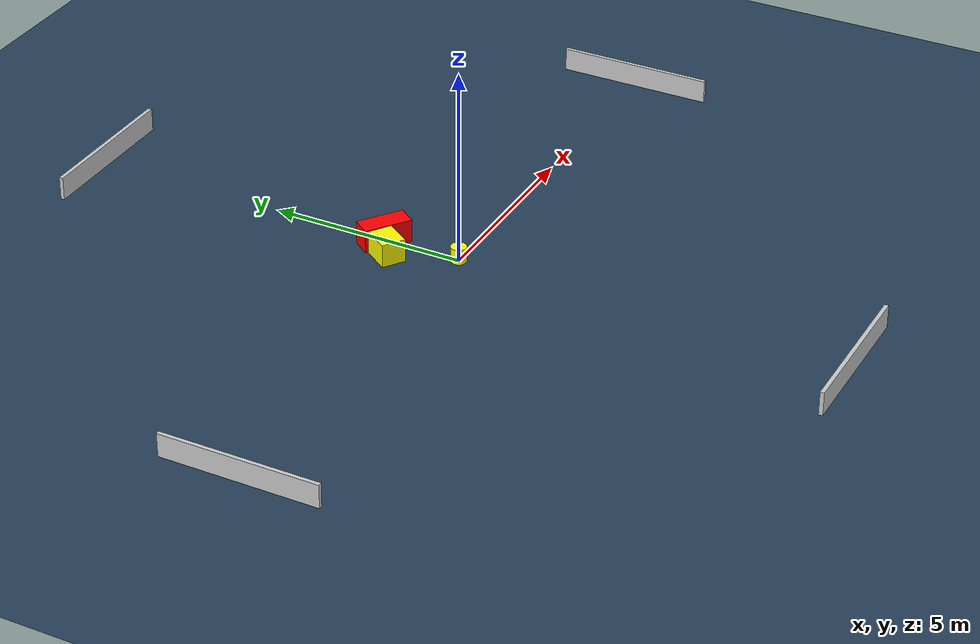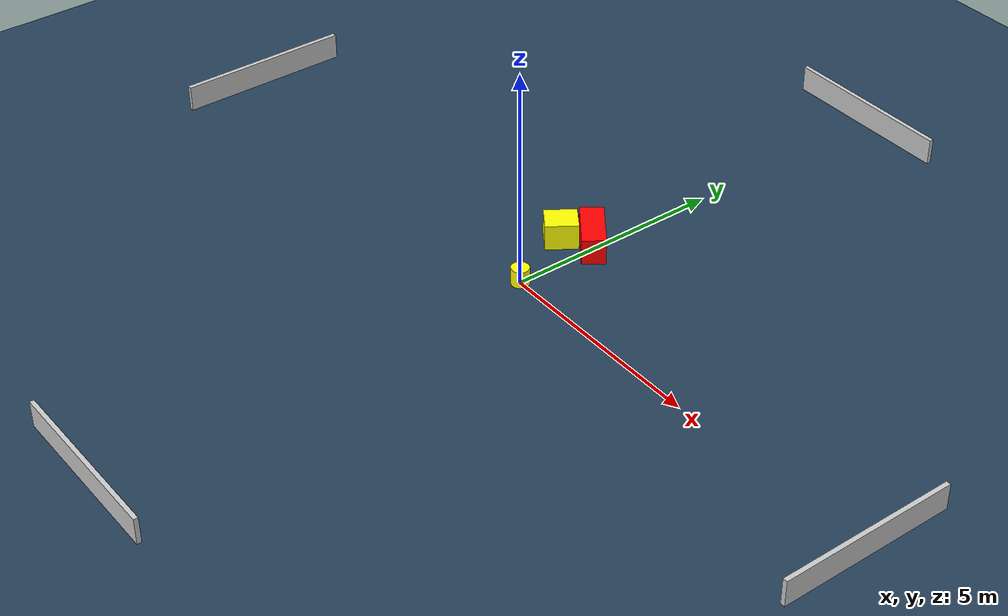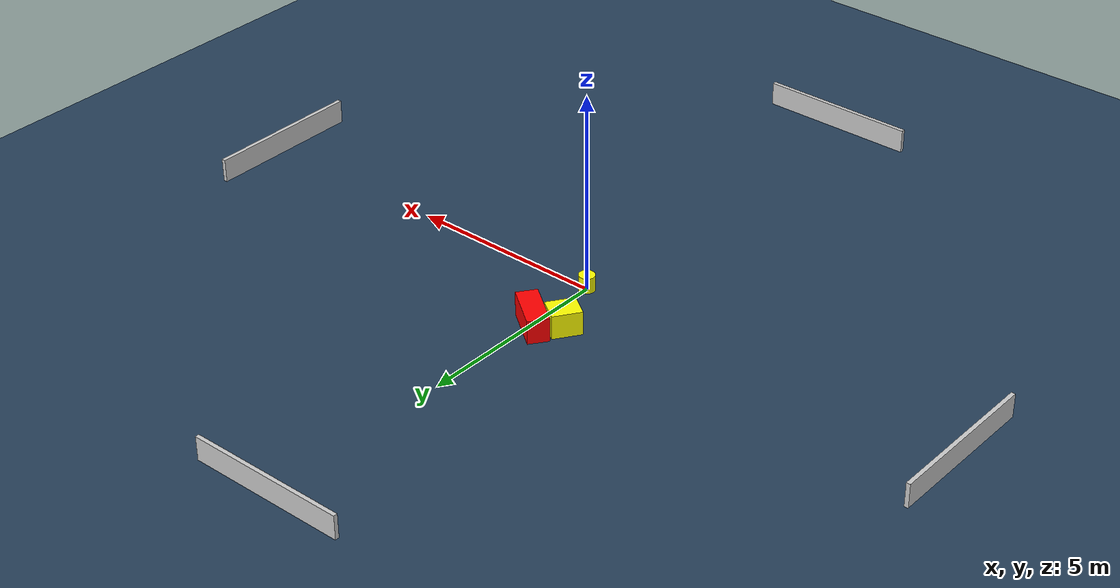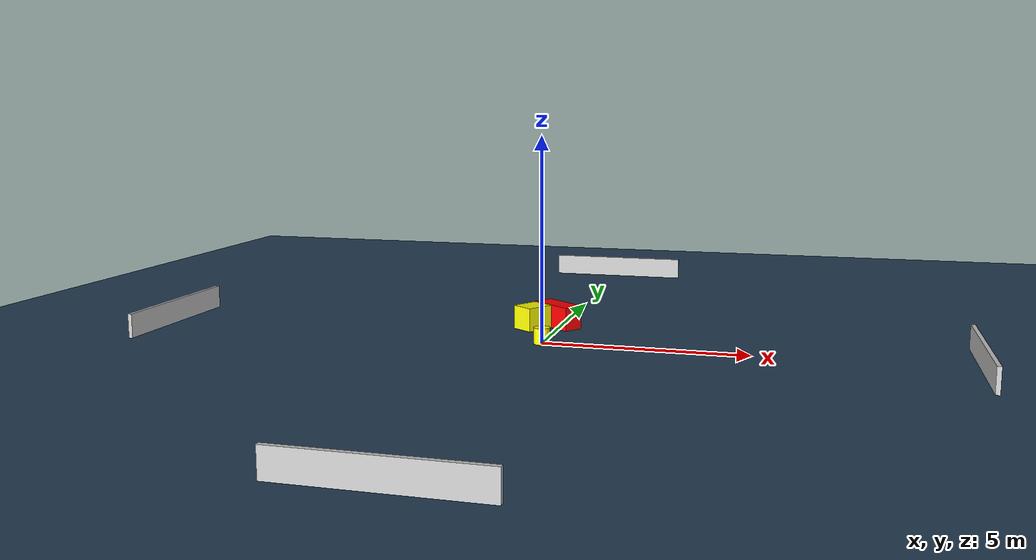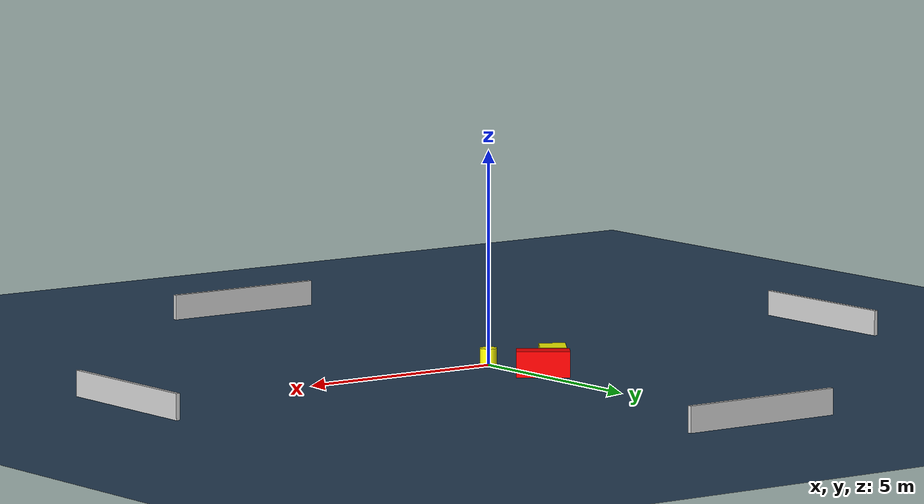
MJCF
<?xml version="1.0" ?>
<mujoco model="generated_environment">
  <option timestep="0.01" integrator="RK4" cone="elliptic"/>
  <default>
    <geom density="1"/>
  </default>
  <asset>
    <texture builtin="gradient" height="3072" name="skybox" rgb1="0.3 0.5 0.7" rgb2="0 0 0" type="skybox" width="512"/>
    <texture builtin="checker" height="300" name="groundplane" rgb1="0.2 0.3 0.4" rgb2="0.1 0.2 0.3" type="2d" width="300"/>
    <material name="groundplane" reflectance="0.2" texrepeat="5 5" texture="groundplane"/>
  </asset>
  <worldbody>
    <light dir="0 0 -1" directional="true" pos="0 0 1.5"/>
    <geom condim="3" friction="0.5 0.005 0.001" material="groundplane" name="floor" pos="0 0 0" size="0 0 0.05" type="plane"/>
    <body name="walls">
      <geom name="wall_1" condim="4" pos="-10.0 0.0 0.3" rgba="0.800000011920929 0.800000011920929 0.800000011920929 1.0" size="0.05 2.0 0.3" type="box"/>
      <geom name="wall_2" condim="4" pos="10.0 0.0 0.3" rgba="0.800000011920929 0.800000011920929 0.800000011920929 1.0" size="0.05 2.0 0.3" type="box"/>
      <geom name="wall_3" condim="4" pos="0.0 -10.0 0.3" rgba="0.800000011920929 0.800000011920929 0.800000011920929 1.0" size="2.0 0.05 0.3" type="box"/>
      <geom name="wall_4" condim="4" pos="0.0 10.0 0.3" rgba="0.800000011920929 0.800000011920929 0.800000011920929 1.0" size="2.0 0.05 0.3" type="box"/>
    </body>
    <body name="robot">
      <joint name="joint_x" type="slide" pos="0 0 0" axis="1 0 0"/>
      <joint name="joint_y" type="slide" pos="0 0 0" axis="0 1 0"/>
      <geom name="robot" type="cylinder" pos="0.0 0.0 0.2" size="0.2 0.2 0.0" mass="5.0" friction="1.0 0.005 0.0001" condim="4" rgba="1.0 1.0 0.0 1.0"/>
    </body>
    <body name="obstacle_1_movable">
      <geom name="obstacle_1_movable" condim="4" pos="-0.6561079707650544 1.5877306966145028 0.3" euler="0 0 325.6629619357497" friction="0.0 0.005 0.001" rgba="1.0 1.0 0.0 1.0" size="0.3102907177472699 0.3637914950511266 0.3" type="box" mass="0.1"/>
      <joint type="free"/>
    </body>
    <body name="obstacle_2_static">
      <geom name="obstacle_2_static" condim="4" pos="-0.08067000048349274 1.9822245383425696 0.3" euler="0 0 143.59191828722027" friction="0.0 0.005 0.001" rgba="1.0 0.0 0.0 1.0" size="0.6155071530377514 0.26298718560218176 0.3" type="box"/>
    </body>
  </worldbody>
  <actuator>
    <motor name="actuator_x" joint="joint_x" gear="1" ctrlrange="-1 1"/>
    <motor name="actuator_y" joint="joint_y" gear="1" ctrlrange="-1 1"/>
  </actuator>
</mujoco>
